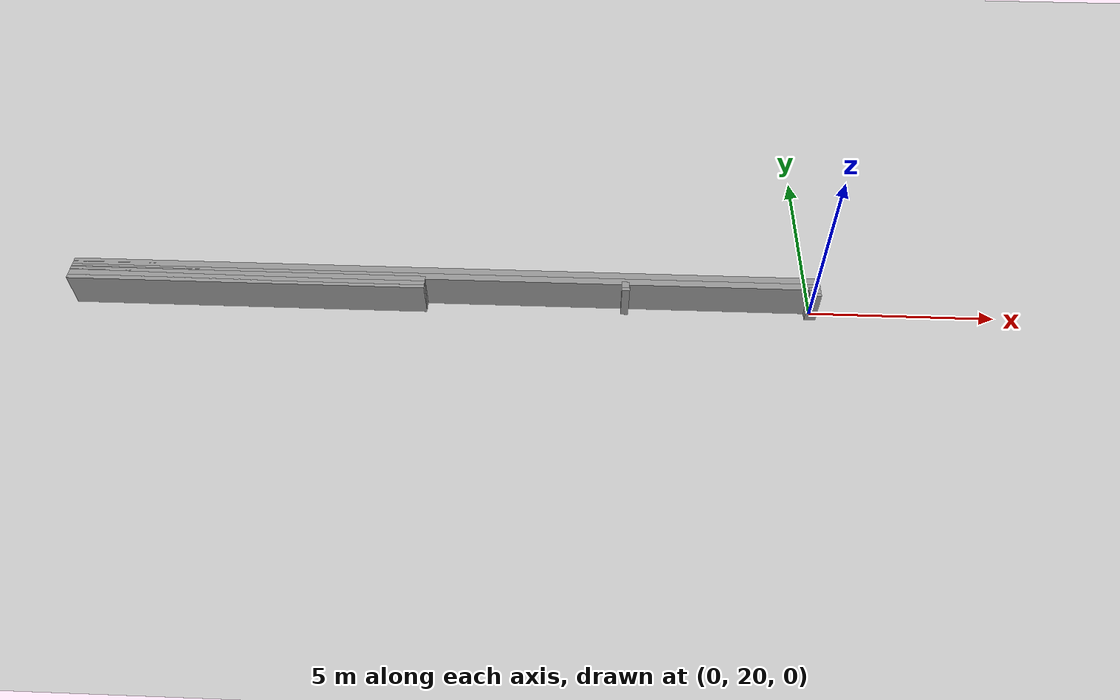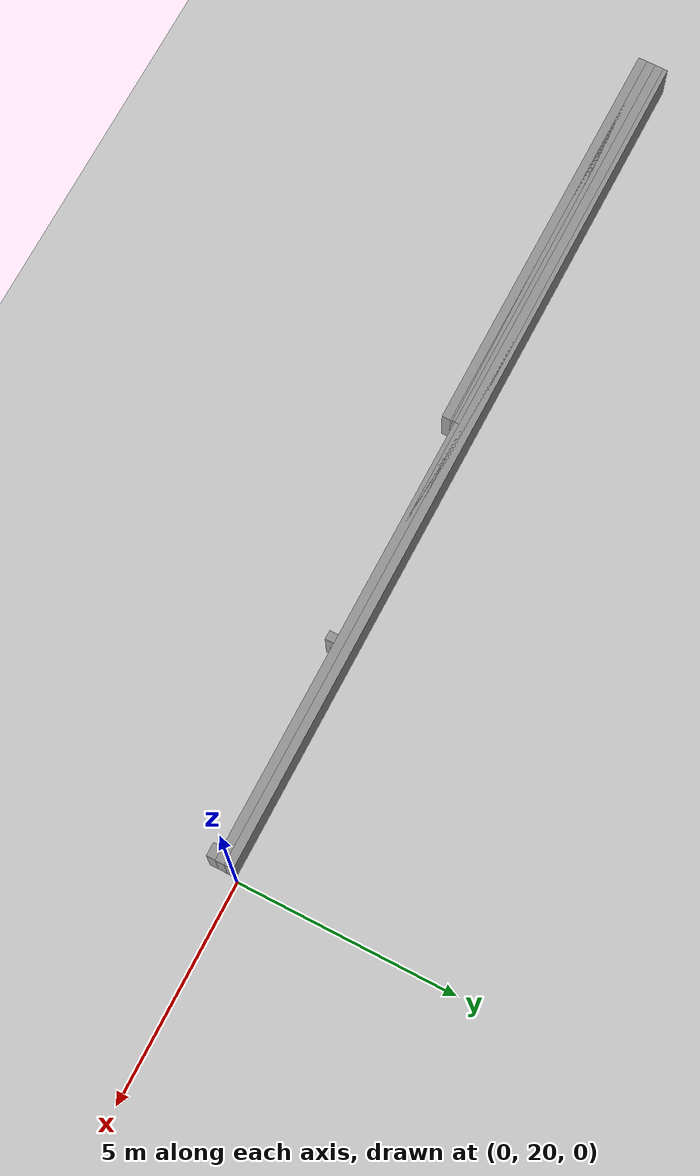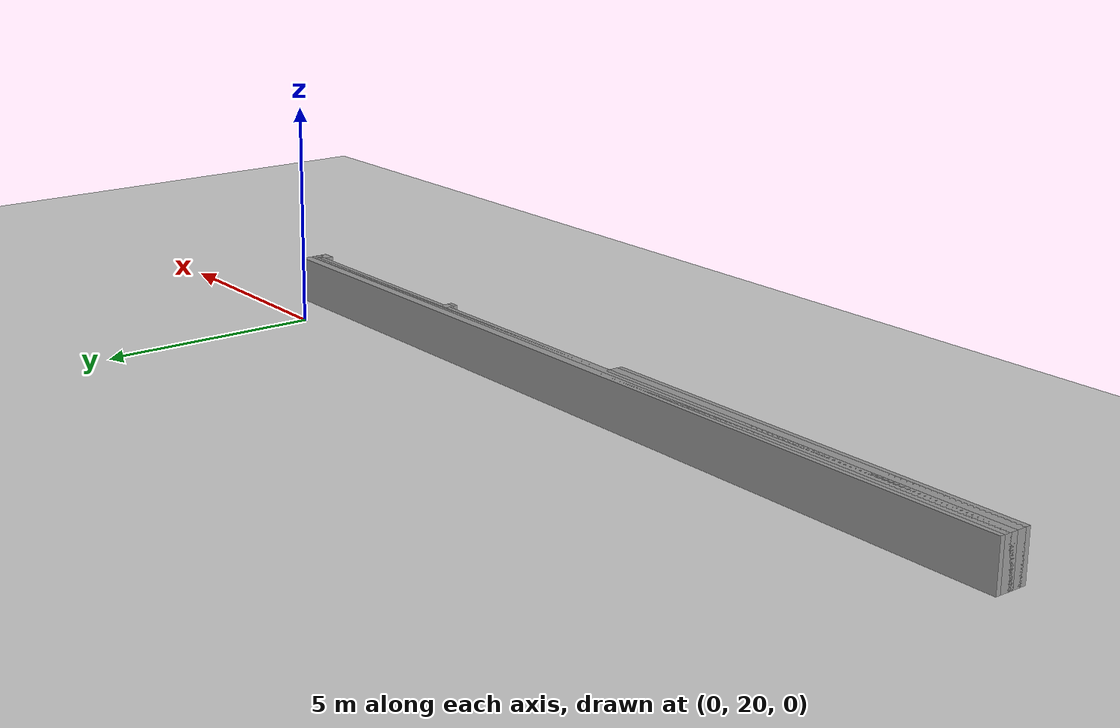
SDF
<sdf version="1.6">
 <world name="GridMap">
  <include><uri>model://sun</uri></include>
  <include><uri>model://ground_plane</uri></include>
  <model name="GridMap">
   <link name="Wall_(151.5,194.0)">
    <collision name="Wall_(151.5,194.0)_Collision">
     <geometry><box><size>9.5 0.2 1.0</size></box></geometry>
     <pose>-15.15 19.400000000000002 0.5 0 -0 0</pose>
    </collision>
    <visual name="Wall_(151.5,194.0)_Visual">
     <geometry><box><size>9.5 0.2 1.0</size></box></geometry>
     <pose>-15.15 19.400000000000002 0.5 0 -0 0</pose>
     <material>
      <script><uri>file://media/materials/scripts/gazebo.material</uri><name>Gazebo/Grey</name></script>
      <ambient>1 1 1 1</ambient>
     </material>
     <meta><layer>0</layer></meta>
    </visual>
    <pose>0 0 0.5 0 -0 0</pose>
   </link>
   <link name="Wall_(1.5,195.0)">
    <collision name="Wall_(1.5,195.0)_Collision">
     <geometry><box><size>0.30000000000000004 0.2 1.0</size></box></geometry>
     <pose>-0.15000000000000002 19.5 0.5 0 -0 0</pose>
    </collision>
    <visual name="Wall_(1.5,195.0)_Visual">
     <geometry><box><size>0.30000000000000004 0.2 1.0</size></box></geometry>
     <pose>-0.15000000000000002 19.5 0.5 0 -0 0</pose>
     <material>
      <script><uri>file://media/materials/scripts/gazebo.material</uri><name>Gazebo/Grey</name></script>
      <ambient>1 1 1 1</ambient>
     </material>
     <meta><layer>0</layer></meta>
    </visual>
    <pose>0 0 0.5 0 -0 0</pose>
   </link>
   <link name="Wall_(51.0,195.0)">
    <collision name="Wall_(51.0,195.0)_Collision">
     <geometry><box><size>0.2 0.2 1.0</size></box></geometry>
     <pose>-5.1000000000000005 19.5 0.5 0 -0 0</pose>
    </collision>
    <visual name="Wall_(51.0,195.0)_Visual">
     <geometry><box><size>0.2 0.2 1.0</size></box></geometry>
     <pose>-5.1000000000000005 19.5 0.5 0 -0 0</pose>
     <material>
      <script><uri>file://media/materials/scripts/gazebo.material</uri><name>Gazebo/Grey</name></script>
      <ambient>1 1 1 1</ambient>
     </material>
     <meta><layer>0</layer></meta>
    </visual>
    <pose>0 0 0.5 0 -0 0</pose>
   </link>
   <link name="Wall_(151.5,195.0)">
    <collision name="Wall_(151.5,195.0)_Collision">
     <geometry><box><size>9.5 0.2 1.0</size></box></geometry>
     <pose>-15.15 19.5 0.5 0 -0 0</pose>
    </collision>
    <visual name="Wall_(151.5,195.0)_Visual">
     <geometry><box><size>9.5 0.2 1.0</size></box></geometry>
     <pose>-15.15 19.5 0.5 0 -0 0</pose>
     <material>
      <script><uri>file://media/materials/scripts/gazebo.material</uri><name>Gazebo/Grey</name></script>
      <ambient>1 1 1 1</ambient>
     </material>
     <meta><layer>0</layer></meta>
    </visual>
    <pose>0 0 0.5 0 -0 0</pose>
   </link>
   <link name="Wall_(1.5,196.0)">
    <collision name="Wall_(1.5,196.0)_Collision">
     <geometry><box><size>0.30000000000000004 0.2 1.0</size></box></geometry>
     <pose>-0.15000000000000002 19.6 0.5 0 -0 0</pose>
    </collision>
    <visual name="Wall_(1.5,196.0)_Visual">
     <geometry><box><size>0.30000000000000004 0.2 1.0</size></box></geometry>
     <pose>-0.15000000000000002 19.6 0.5 0 -0 0</pose>
     <material>
      <script><uri>file://media/materials/scripts/gazebo.material</uri><name>Gazebo/Grey</name></script>
      <ambient>1 1 1 1</ambient>
     </material>
     <meta><layer>0</layer></meta>
    </visual>
    <pose>0 0 0.5 0 -0 0</pose>
   </link>
   <link name="Wall_(51.0,196.0)">
    <collision name="Wall_(51.0,196.0)_Collision">
     <geometry><box><size>0.2 0.2 1.0</size></box></geometry>
     <pose>-5.1000000000000005 19.6 0.5 0 -0 0</pose>
    </collision>
    <visual name="Wall_(51.0,196.0)_Visual">
     <geometry><box><size>0.2 0.2 1.0</size></box></geometry>
     <pose>-5.1000000000000005 19.6 0.5 0 -0 0</pose>
     <material>
      <script><uri>file://media/materials/scripts/gazebo.material</uri><name>Gazebo/Grey</name></script>
      <ambient>1 1 1 1</ambient>
     </material>
     <meta><layer>0</layer></meta>
    </visual>
    <pose>0 0 0.5 0 -0 0</pose>
   </link>
   <link name="Wall_(151.5,196.0)">
    <collision name="Wall_(151.5,196.0)_Collision">
     <geometry><box><size>9.5 0.2 1.0</size></box></geometry>
     <pose>-15.15 19.6 0.5 0 -0 0</pose>
    </collision>
    <visual name="Wall_(151.5,196.0)_Visual">
     <geometry><box><size>9.5 0.2 1.0</size></box></geometry>
     <pose>-15.15 19.6 0.5 0 -0 0</pose>
     <material>
      <script><uri>file://media/materials/scripts/gazebo.material</uri><name>Gazebo/Grey</name></script>
      <ambient>1 1 1 1</ambient>
     </material>
     <meta><layer>0</layer></meta>
    </visual>
    <pose>0 0 0.5 0 -0 0</pose>
   </link>
   <link name="Wall_(99.5,197.0)">
    <collision name="Wall_(99.5,197.0)_Collision">
     <geometry><box><size>19.900000000000002 0.2 1.0</size></box></geometry>
     <pose>-9.950000000000001 19.700000000000003 0.5 0 -0 0</pose>
    </collision>
    <visual name="Wall_(99.5,197.0)_Visual">
     <geometry><box><size>19.900000000000002 0.2 1.0</size></box></geometry>
     <pose>-9.950000000000001 19.700000000000003 0.5 0 -0 0</pose>
     <material>
      <script><uri>file://media/materials/scripts/gazebo.material</uri><name>Gazebo/Grey</name></script>
      <ambient>1 1 1 1</ambient>
     </material>
     <meta><layer>0</layer></meta>
    </visual>
    <pose>0 0 0.5 0 -0 0</pose>
   </link>
   <link name="Wall_(99.5,198.0)">
    <collision name="Wall_(99.5,198.0)_Collision">
     <geometry><box><size>19.900000000000002 0.2 1.0</size></box></geometry>
     <pose>-9.950000000000001 19.8 0.5 0 -0 0</pose>
    </collision>
    <visual name="Wall_(99.5,198.0)_Visual">
     <geometry><box><size>19.900000000000002 0.2 1.0</size></box></geometry>
     <pose>-9.950000000000001 19.8 0.5 0 -0 0</pose>
     <material>
      <script><uri>file://media/materials/scripts/gazebo.material</uri><name>Gazebo/Grey</name></script>
      <ambient>1 1 1 1</ambient>
     </material>
     <meta><layer>0</layer></meta>
    </visual>
    <pose>0 0 0.5 0 -0 0</pose>
   </link>
   <link name="Wall_(99.5,199.0)">
    <collision name="Wall_(99.5,199.0)_Collision">
     <geometry><box><size>19.900000000000002 0.2 1.0</size></box></geometry>
     <pose>-9.950000000000001 19.900000000000002 0.5 0 -0 0</pose>
    </collision>
    <visual name="Wall_(99.5,199.0)_Visual">
     <geometry><box><size>19.900000000000002 0.2 1.0</size></box></geometry>
     <pose>-9.950000000000001 19.900000000000002 0.5 0 -0 0</pose>
     <material>
      <script><uri>file://media/materials/scripts/gazebo.material</uri><name>Gazebo/Grey</name></script>
      <ambient>1 1 1 1</ambient>
     </material>
     <meta><layer>0</layer></meta>
    </visual>
    <pose>0 0 0.5 0 -0 0</pose>
   </link>
   <static>1</static>
  </model>
 </world>
</sdf>
